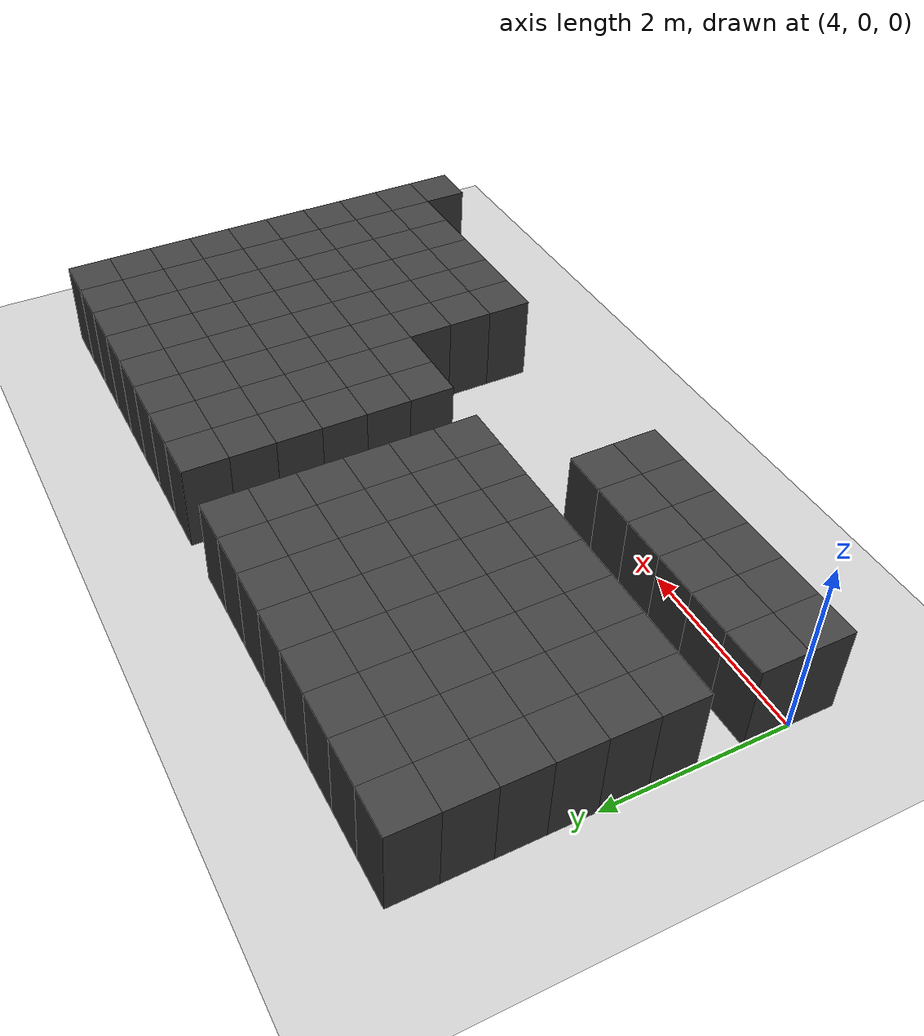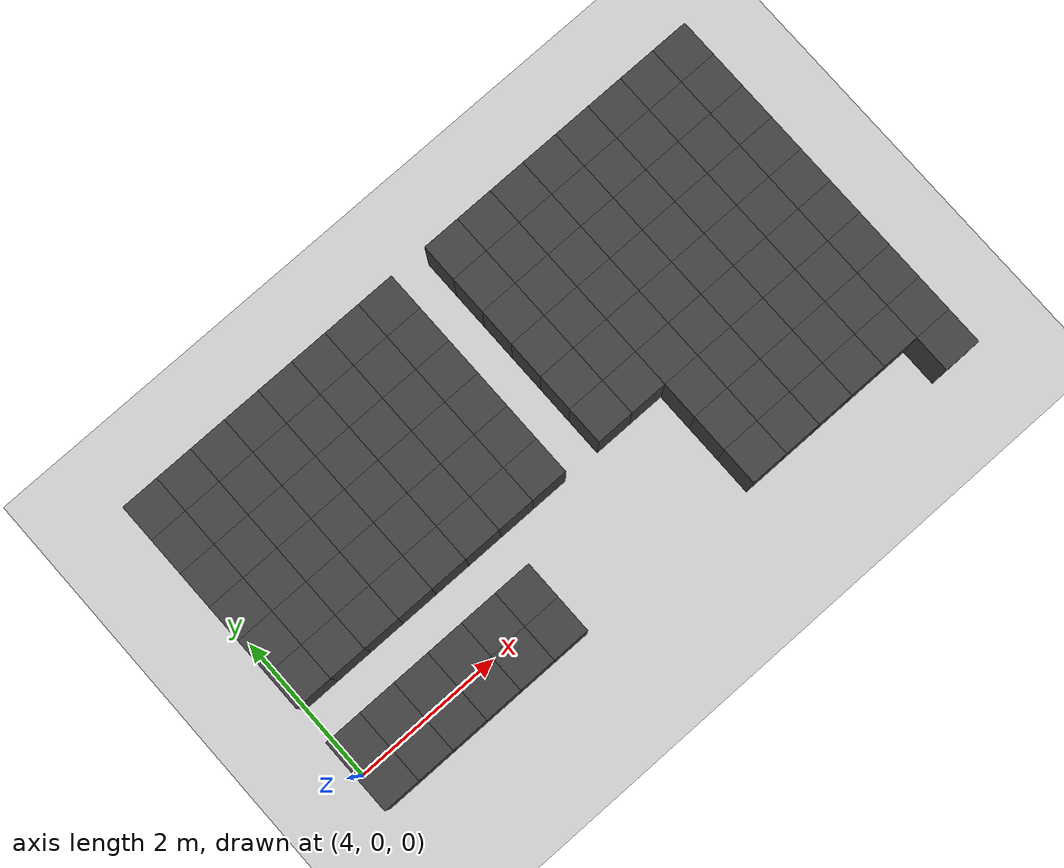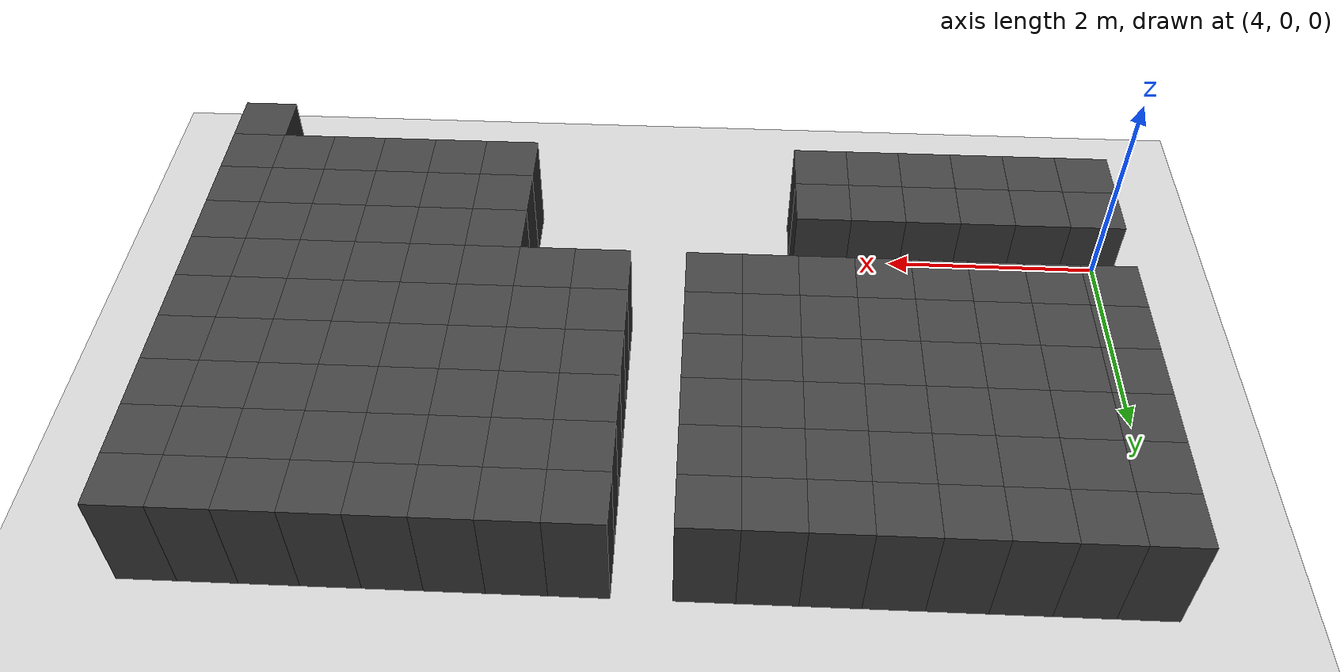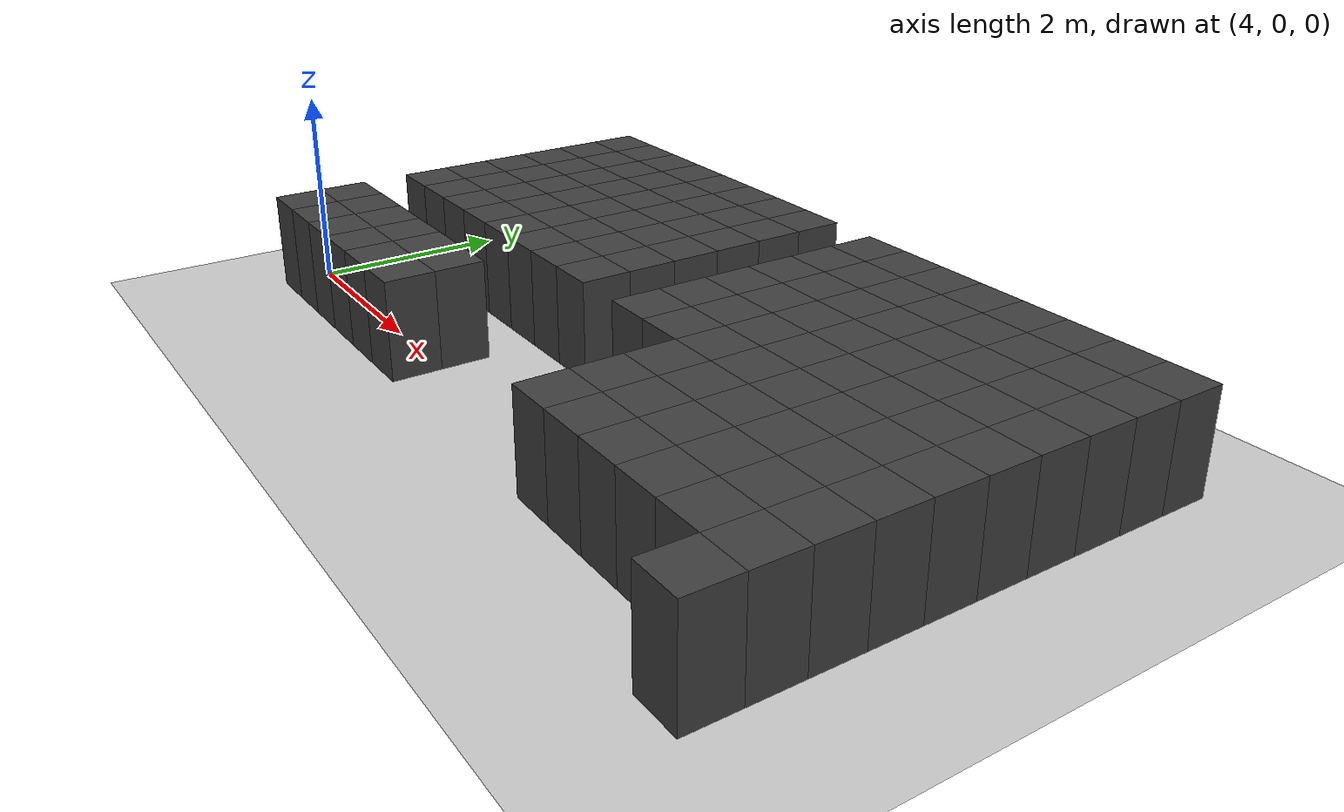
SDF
<sdf version="1.7">
 <world name="map_10777">
  <model name="ground_plane">
   <static>true</static>
   <link name="link">
    <collision name="collision">
     <geometry><plane><normal>0 0 1</normal><size>200 200</size></plane></geometry>
    </collision>
    <visual name="visual">
     <geometry><plane><normal>0 0 1</normal><size>200 200</size></plane></geometry>
     <material><ambient>0.8 0.8 0.8 1</ambient><diffuse>0.8 0.8 0.8 1</diffuse></material>
    </visual>
   </link>
  </model>
  <model name="maze_environment">
   <static>true</static>
   <link name="wall_824">
    <pose>4.250 3.750 0.500 0 0 0</pose>
    <collision name="col"><geometry><box><size>0.5 0.5 1.0</size></box></geometry></collision>
    <visual name="vis">
     <geometry><box><size>0.5 0.5 1.0</size></box></geometry>
     <material><ambient>0.15 0.15 0.15 1</ambient><diffuse>0.25 0.25 0.25 1</diffuse></material>
    </visual>
   </link>
   <link name="wall_825">
    <pose>4.750 3.750 0.500 0 0 0</pose>
    <collision name="col"><geometry><box><size>0.5 0.5 1.0</size></box></geometry></collision>
    <visual name="vis">
     <geometry><box><size>0.5 0.5 1.0</size></box></geometry>
     <material><ambient>0.15 0.15 0.15 1</ambient><diffuse>0.25 0.25 0.25 1</diffuse></material>
    </visual>
   </link>
   <link name="wall_826">
    <pose>5.250 3.750 0.500 0 0 0</pose>
    <collision name="col"><geometry><box><size>0.5 0.5 1.0</size></box></geometry></collision>
    <visual name="vis">
     <geometry><box><size>0.5 0.5 1.0</size></box></geometry>
     <material><ambient>0.15 0.15 0.15 1</ambient><diffuse>0.25 0.25 0.25 1</diffuse></material>
    </visual>
   </link>
   <link name="wall_827">
    <pose>5.750 3.750 0.500 0 0 0</pose>
    <collision name="col"><geometry><box><size>0.5 0.5 1.0</size></box></geometry></collision>
    <visual name="vis">
     <geometry><box><size>0.5 0.5 1.0</size></box></geometry>
     <material><ambient>0.15 0.15 0.15 1</ambient><diffuse>0.25 0.25 0.25 1</diffuse></material>
    </visual>
   </link>
   <link name="wall_828">
    <pose>6.250 3.750 0.500 0 0 0</pose>
    <collision name="col"><geometry><box><size>0.5 0.5 1.0</size></box></geometry></collision>
    <visual name="vis">
     <geometry><box><size>0.5 0.5 1.0</size></box></geometry>
     <material><ambient>0.15 0.15 0.15 1</ambient><diffuse>0.25 0.25 0.25 1</diffuse></material>
    </visual>
   </link>
   <link name="wall_829">
    <pose>6.750 3.750 0.500 0 0 0</pose>
    <collision name="col"><geometry><box><size>0.5 0.5 1.0</size></box></geometry></collision>
    <visual name="vis">
     <geometry><box><size>0.5 0.5 1.0</size></box></geometry>
     <material><ambient>0.15 0.15 0.15 1</ambient><diffuse>0.25 0.25 0.25 1</diffuse></material>
    </visual>
   </link>
   <link name="wall_830">
    <pose>7.250 3.750 0.500 0 0 0</pose>
    <collision name="col"><geometry><box><size>0.5 0.5 1.0</size></box></geometry></collision>
    <visual name="vis">
     <geometry><box><size>0.5 0.5 1.0</size></box></geometry>
     <material><ambient>0.15 0.15 0.15 1</ambient><diffuse>0.25 0.25 0.25 1</diffuse></material>
    </visual>
   </link>
   <link name="wall_831">
    <pose>7.750 3.750 0.500 0 0 0</pose>
    <collision name="col"><geometry><box><size>0.5 0.5 1.0</size></box></geometry></collision>
    <visual name="vis">
     <geometry><box><size>0.5 0.5 1.0</size></box></geometry>
     <material><ambient>0.15 0.15 0.15 1</ambient><diffuse>0.25 0.25 0.25 1</diffuse></material>
    </visual>
   </link>
   <link name="wall_832">
    <pose>8.750 3.750 0.500 0 0 0</pose>
    <collision name="col"><geometry><box><size>0.5 0.5 1.0</size></box></geometry></collision>
    <visual name="vis">
     <geometry><box><size>0.5 0.5 1.0</size></box></geometry>
     <material><ambient>0.15 0.15 0.15 1</ambient><diffuse>0.25 0.25 0.25 1</diffuse></material>
    </visual>
   </link>
   <link name="wall_833">
    <pose>9.250 3.750 0.500 0 0 0</pose>
    <collision name="col"><geometry><box><size>0.5 0.5 1.0</size></box></geometry></collision>
    <visual name="vis">
     <geometry><box><size>0.5 0.5 1.0</size></box></geometry>
     <material><ambient>0.15 0.15 0.15 1</ambient><diffuse>0.25 0.25 0.25 1</diffuse></material>
    </visual>
   </link>
   <link name="wall_834">
    <pose>9.750 3.750 0.500 0 0 0</pose>
    <collision name="col"><geometry><box><size>0.5 0.5 1.0</size></box></geometry></collision>
    <visual name="vis">
     <geometry><box><size>0.5 0.5 1.0</size></box></geometry>
     <material><ambient>0.15 0.15 0.15 1</ambient><diffuse>0.25 0.25 0.25 1</diffuse></material>
    </visual>
   </link>
   <link name="wall_835">
    <pose>10.250 3.750 0.500 0 0 0</pose>
    <collision name="col"><geometry><box><size>0.5 0.5 1.0</size></box></geometry></collision>
    <visual name="vis">
     <geometry><box><size>0.5 0.5 1.0</size></box></geometry>
     <material><ambient>0.15 0.15 0.15 1</ambient><diffuse>0.25 0.25 0.25 1</diffuse></material>
    </visual>
   </link>
   <link name="wall_836">
    <pose>10.750 3.750 0.500 0 0 0</pose>
    <collision name="col"><geometry><box><size>0.5 0.5 1.0</size></box></geometry></collision>
    <visual name="vis">
     <geometry><box><size>0.5 0.5 1.0</size></box></geometry>
     <material><ambient>0.15 0.15 0.15 1</ambient><diffuse>0.25 0.25 0.25 1</diffuse></material>
    </visual>
   </link>
   <link name="wall_837">
    <pose>11.250 3.750 0.500 0 0 0</pose>
    <collision name="col"><geometry><box><size>0.5 0.5 1.0</size></box></geometry></collision>
    <visual name="vis">
     <geometry><box><size>0.5 0.5 1.0</size></box></geometry>
     <material><ambient>0.15 0.15 0.15 1</ambient><diffuse>0.25 0.25 0.25 1</diffuse></material>
    </visual>
   </link>
   <link name="wall_838">
    <pose>11.750 3.750 0.500 0 0 0</pose>
    <collision name="col"><geometry><box><size>0.5 0.5 1.0</size></box></geometry></collision>
    <visual name="vis">
     <geometry><box><size>0.5 0.5 1.0</size></box></geometry>
     <material><ambient>0.15 0.15 0.15 1</ambient><diffuse>0.25 0.25 0.25 1</diffuse></material>
    </visual>
   </link>
   <link name="wall_839">
    <pose>12.250 3.750 0.500 0 0 0</pose>
    <collision name="col"><geometry><box><size>0.5 0.5 1.0</size></box></geometry></collision>
    <visual name="vis">
     <geometry><box><size>0.5 0.5 1.0</size></box></geometry>
     <material><ambient>0.15 0.15 0.15 1</ambient><diffuse>0.25 0.25 0.25 1</diffuse></material>
    </visual>
   </link>
   <link name="wall_872">
    <pose>4.250 3.250 0.500 0 0 0</pose>
    <collision name="col"><geometry><box><size>0.5 0.5 1.0</size></box></geometry></collision>
    <visual name="vis">
     <geometry><box><size>0.5 0.5 1.0</size></box></geometry>
     <material><ambient>0.15 0.15 0.15 1</ambient><diffuse>0.25 0.25 0.25 1</diffuse></material>
    </visual>
   </link>
   <link name="wall_873">
    <pose>4.750 3.250 0.500 0 0 0</pose>
    <collision name="col"><geometry><box><size>0.5 0.5 1.0</size></box></geometry></collision>
    <visual name="vis">
     <geometry><box><size>0.5 0.5 1.0</size></box></geometry>
     <material><ambient>0.15 0.15 0.15 1</ambient><diffuse>0.25 0.25 0.25 1</diffuse></material>
    </visual>
   </link>
   <link name="wall_874">
    <pose>5.250 3.250 0.500 0 0 0</pose>
    <collision name="col"><geometry><box><size>0.5 0.5 1.0</size></box></geometry></collision>
    <visual name="vis">
     <geometry><box><size>0.5 0.5 1.0</size></box></geometry>
     <material><ambient>0.15 0.15 0.15 1</ambient><diffuse>0.25 0.25 0.25 1</diffuse></material>
    </visual>
   </link>
   <link name="wall_875">
    <pose>5.750 3.250 0.500 0 0 0</pose>
    <collision name="col"><geometry><box><size>0.5 0.5 1.0</size></box></geometry></collision>
    <visual name="vis">
     <geometry><box><size>0.5 0.5 1.0</size></box></geometry>
     <material><ambient>0.15 0.15 0.15 1</ambient><diffuse>0.25 0.25 0.25 1</diffuse></material>
    </visual>
   </link>
   <link name="wall_876">
    <pose>6.250 3.250 0.500 0 0 0</pose>
    <collision name="col"><geometry><box><size>0.5 0.5 1.0</size></box></geometry></collision>
    <visual name="vis">
     <geometry><box><size>0.5 0.5 1.0</size></box></geometry>
     <material><ambient>0.15 0.15 0.15 1</ambient><diffuse>0.25 0.25 0.25 1</diffuse></material>
    </visual>
   </link>
   <link name="wall_877">
    <pose>6.750 3.250 0.500 0 0 0</pose>
    <collision name="col"><geometry><box><size>0.5 0.5 1.0</size></box></geometry></collision>
    <visual name="vis">
     <geometry><box><size>0.5 0.5 1.0</size></box></geometry>
     <material><ambient>0.15 0.15 0.15 1</ambient><diffuse>0.25 0.25 0.25 1</diffuse></material>
    </visual>
   </link>
   <link name="wall_878">
    <pose>7.250 3.250 0.500 0 0 0</pose>
    <collision name="col"><geometry><box><size>0.5 0.5 1.0</size></box></geometry></collision>
    <visual name="vis">
     <geometry><box><size>0.5 0.5 1.0</size></box></geometry>
     <material><ambient>0.15 0.15 0.15 1</ambient><diffuse>0.25 0.25 0.25 1</diffuse></material>
    </visual>
   </link>
   <link name="wall_879">
    <pose>7.750 3.250 0.500 0 0 0</pose>
    <collision name="col"><geometry><box><size>0.5 0.5 1.0</size></box></geometry></collision>
    <visual name="vis">
     <geometry><box><size>0.5 0.5 1.0</size></box></geometry>
     <material><ambient>0.15 0.15 0.15 1</ambient><diffuse>0.25 0.25 0.25 1</diffuse></material>
    </visual>
   </link>
   <link name="wall_880">
    <pose>8.750 3.250 0.500 0 0 0</pose>
    <collision name="col"><geometry><box><size>0.5 0.5 1.0</size></box></geometry></collision>
    <visual name="vis">
     <geometry><box><size>0.5 0.5 1.0</size></box></geometry>
     <material><ambient>0.15 0.15 0.15 1</ambient><diffuse>0.25 0.25 0.25 1</diffuse></material>
    </visual>
   </link>
   <link name="wall_881">
    <pose>9.250 3.250 0.500 0 0 0</pose>
    <collision name="col"><geometry><box><size>0.5 0.5 1.0</size></box></geometry></collision>
    <visual name="vis">
     <geometry><box><size>0.5 0.5 1.0</size></box></geometry>
     <material><ambient>0.15 0.15 0.15 1</ambient><diffuse>0.25 0.25 0.25 1</diffuse></material>
    </visual>
   </link>
   <link name="wall_882">
    <pose>9.750 3.250 0.500 0 0 0</pose>
    <collision name="col"><geometry><box><size>0.5 0.5 1.0</size></box></geometry></collision>
    <visual name="vis">
     <geometry><box><size>0.5 0.5 1.0</size></box></geometry>
     <material><ambient>0.15 0.15 0.15 1</ambient><diffuse>0.25 0.25 0.25 1</diffuse></material>
    </visual>
   </link>
   <link name="wall_883">
    <pose>10.250 3.250 0.500 0 0 0</pose>
    <collision name="col"><geometry><box><size>0.5 0.5 1.0</size></box></geometry></collision>
    <visual name="vis">
     <geometry><box><size>0.5 0.5 1.0</size></box></geometry>
     <material><ambient>0.15 0.15 0.15 1</ambient><diffuse>0.25 0.25 0.25 1</diffuse></material>
    </visual>
   </link>
   <link name="wall_884">
    <pose>10.750 3.250 0.500 0 0 0</pose>
    <collision name="col"><geometry><box><size>0.5 0.5 1.0</size></box></geometry></collision>
    <visual name="vis">
     <geometry><box><size>0.5 0.5 1.0</size></box></geometry>
     <material><ambient>0.15 0.15 0.15 1</ambient><diffuse>0.25 0.25 0.25 1</diffuse></material>
    </visual>
   </link>
   <link name="wall_885">
    <pose>11.250 3.250 0.500 0 0 0</pose>
    <collision name="col"><geometry><box><size>0.5 0.5 1.0</size></box></geometry></collision>
    <visual name="vis">
     <geometry><box><size>0.5 0.5 1.0</size></box></geometry>
     <material><ambient>0.15 0.15 0.15 1</ambient><diffuse>0.25 0.25 0.25 1</diffuse></material>
    </visual>
   </link>
   <link name="wall_886">
    <pose>11.750 3.250 0.500 0 0 0</pose>
    <collision name="col"><geometry><box><size>0.5 0.5 1.0</size></box></geometry></collision>
    <visual name="vis">
     <geometry><box><size>0.5 0.5 1.0</size></box></geometry>
     <material><ambient>0.15 0.15 0.15 1</ambient><diffuse>0.25 0.25 0.25 1</diffuse></material>
    </visual>
   </link>
   <link name="wall_887">
    <pose>12.250 3.250 0.500 0 0 0</pose>
    <collision name="col"><geometry><box><size>0.5 0.5 1.0</size></box></geometry></collision>
    <visual name="vis">
     <geometry><box><size>0.5 0.5 1.0</size></box></geometry>
     <material><ambient>0.15 0.15 0.15 1</ambient><diffuse>0.25 0.25 0.25 1</diffuse></material>
    </visual>
   </link>
   <link name="wall_920">
    <pose>4.250 2.750 0.500 0 0 0</pose>
    <collision name="col"><geometry><box><size>0.5 0.5 1.0</size></box></geometry></collision>
    <visual name="vis">
     <geometry><box><size>0.5 0.5 1.0</size></box></geometry>
     <material><ambient>0.15 0.15 0.15 1</ambient><diffuse>0.25 0.25 0.25 1</diffuse></material>
    </visual>
   </link>
   <link name="wall_921">
    <pose>4.750 2.750 0.500 0 0 0</pose>
    <collision name="col"><geometry><box><size>0.5 0.5 1.0</size></box></geometry></collision>
    <visual name="vis">
     <geometry><box><size>0.5 0.5 1.0</size></box></geometry>
     <material><ambient>0.15 0.15 0.15 1</ambient><diffuse>0.25 0.25 0.25 1</diffuse></material>
    </visual>
   </link>
   <link name="wall_922">
    <pose>5.250 2.750 0.500 0 0 0</pose>
    <collision name="col"><geometry><box><size>0.5 0.5 1.0</size></box></geometry></collision>
    <visual name="vis">
     <geometry><box><size>0.5 0.5 1.0</size></box></geometry>
     <material><ambient>0.15 0.15 0.15 1</ambient><diffuse>0.25 0.25 0.25 1</diffuse></material>
    </visual>
   </link>
   <link name="wall_923">
    <pose>5.750 2.750 0.500 0 0 0</pose>
    <collision name="col"><geometry><box><size>0.5 0.5 1.0</size></box></geometry></collision>
    <visual name="vis">
     <geometry><box><size>0.5 0.5 1.0</size></box></geometry>
     <material><ambient>0.15 0.15 0.15 1</ambient><diffuse>0.25 0.25 0.25 1</diffuse></material>
    </visual>
   </link>
   <link name="wall_924">
    <pose>6.250 2.750 0.500 0 0 0</pose>
    <collision name="col"><geometry><box><size>0.5 0.5 1.0</size></box></geometry></collision>
    <visual name="vis">
     <geometry><box><size>0.5 0.5 1.0</size></box></geometry>
     <material><ambient>0.15 0.15 0.15 1</ambient><diffuse>0.25 0.25 0.25 1</diffuse></material>
    </visual>
   </link>
   <link name="wall_925">
    <pose>6.750 2.750 0.500 0 0 0</pose>
    <collision name="col"><geometry><box><size>0.5 0.5 1.0</size></box></geometry></collision>
    <visual name="vis">
     <geometry><box><size>0.5 0.5 1.0</size></box></geometry>
     <material><ambient>0.15 0.15 0.15 1</ambient><diffuse>0.25 0.25 0.25 1</diffuse></material>
    </visual>
   </link>
   <link name="wall_926">
    <pose>7.250 2.750 0.500 0 0 0</pose>
    <collision name="col"><geometry><box><size>0.5 0.5 1.0</size></box></geometry></collision>
    <visual name="vis">
     <geometry><box><size>0.5 0.5 1.0</size></box></geometry>
     <material><ambient>0.15 0.15 0.15 1</ambient><diffuse>0.25 0.25 0.25 1</diffuse></material>
    </visual>
   </link>
   <link name="wall_927">
    <pose>7.750 2.750 0.500 0 0 0</pose>
    <collision name="col"><geometry><box><size>0.5 0.5 1.0</size></box></geometry></collision>
    <visual name="vis">
     <geometry><box><size>0.5 0.5 1.0</size></box></geometry>
     <material><ambient>0.15 0.15 0.15 1</ambient><diffuse>0.25 0.25 0.25 1</diffuse></material>
    </visual>
   </link>
   <link name="wall_928">
    <pose>8.750 2.750 0.500 0 0 0</pose>
    <collision name="col"><geometry><box><size>0.5 0.5 1.0</size></box></geometry></collision>
    <visual name="vis">
     <geometry><box><size>0.5 0.5 1.0</size></box></geometry>
     <material><ambient>0.15 0.15 0.15 1</ambient><diffuse>0.25 0.25 0.25 1</diffuse></material>
    </visual>
   </link>
   <link name="wall_929">
    <pose>9.250 2.750 0.500 0 0 0</pose>
    <collision name="col"><geometry><box><size>0.5 0.5 1.0</size></box></geometry></collision>
    <visual name="vis">
     <geometry><box><size>0.5 0.5 1.0</size></box></geometry>
     <material><ambient>0.15 0.15 0.15 1</ambient><diffuse>0.25 0.25 0.25 1</diffuse></material>
    </visual>
   </link>
   <link name="wall_930">
    <pose>9.750 2.750 0.500 0 0 0</pose>
    <collision name="col"><geometry><box><size>0.5 0.5 1.0</size></box></geometry></collision>
    <visual name="vis">
     <geometry><box><size>0.5 0.5 1.0</size></box></geometry>
     <material><ambient>0.15 0.15 0.15 1</ambient><diffuse>0.25 0.25 0.25 1</diffuse></material>
    </visual>
   </link>
   <link name="wall_931">
    <pose>10.250 2.750 0.500 0 0 0</pose>
    <collision name="col"><geometry><box><size>0.5 0.5 1.0</size></box></geometry></collision>
    <visual name="vis">
     <geometry><box><size>0.5 0.5 1.0</size></box></geometry>
     <material><ambient>0.15 0.15 0.15 1</ambient><diffuse>0.25 0.25 0.25 1</diffuse></material>
    </visual>
   </link>
   <link name="wall_932">
    <pose>10.750 2.750 0.500 0 0 0</pose>
    <collision name="col"><geometry><box><size>0.5 0.5 1.0</size></box></geometry></collision>
    <visual name="vis">
     <geometry><box><size>0.5 0.5 1.0</size></box></geometry>
     <material><ambient>0.15 0.15 0.15 1</ambient><diffuse>0.25 0.25 0.25 1</diffuse></material>
    </visual>
   </link>
   <link name="wall_933">
    <pose>11.250 2.750 0.500 0 0 0</pose>
    <collision name="col"><geometry><box><size>0.5 0.5 1.0</size></box></geometry></collision>
    <visual name="vis">
     <geometry><box><size>0.5 0.5 1.0</size></box></geometry>
     <material><ambient>0.15 0.15 0.15 1</ambient><diffuse>0.25 0.25 0.25 1</diffuse></material>
    </visual>
   </link>
   <link name="wall_934">
    <pose>11.750 2.750 0.500 0 0 0</pose>
    <collision name="col"><geometry><box><size>0.5 0.5 1.0</size></box></geometry></collision>
    <visual name="vis">
     <geometry><box><size>0.5 0.5 1.0</size></box></geometry>
     <material><ambient>0.15 0.15 0.15 1</ambient><diffuse>0.25 0.25 0.25 1</diffuse></material>
    </visual>
   </link>
   <link name="wall_935">
    <pose>12.250 2.750 0.500 0 0 0</pose>
    <collision name="col"><geometry><box><size>0.5 0.5 1.0</size></box></geometry></collision>
    <visual name="vis">
     <geometry><box><size>0.5 0.5 1.0</size></box></geometry>
     <material><ambient>0.15 0.15 0.15 1</ambient><diffuse>0.25 0.25 0.25 1</diffuse></material>
    </visual>
   </link>
   <link name="wall_968">
    <pose>4.250 2.250 0.500 0 0 0</pose>
    <collision name="col"><geometry><box><size>0.5 0.5 1.0</size></box></geometry></collision>
    <visual name="vis">
     <geometry><box><size>0.5 0.5 1.0</size></box></geometry>
     <material><ambient>0.15 0.15 0.15 1</ambient><diffuse>0.25 0.25 0.25 1</diffuse></material>
    </visual>
   </link>
   <link name="wall_969">
    <pose>4.750 2.250 0.500 0 0 0</pose>
    <collision name="col"><geometry><box><size>0.5 0.5 1.0</size></box></geometry></collision>
    <visual name="vis">
     <geometry><box><size>0.5 0.5 1.0</size></box></geometry>
     <material><ambient>0.15 0.15 0.15 1</ambient><diffuse>0.25 0.25 0.25 1</diffuse></material>
    </visual>
   </link>
   <link name="wall_970">
    <pose>5.250 2.250 0.500 0 0 0</pose>
    <collision name="col"><geometry><box><size>0.5 0.5 1.0</size></box></geometry></collision>
    <visual name="vis">
     <geometry><box><size>0.5 0.5 1.0</size></box></geometry>
     <material><ambient>0.15 0.15 0.15 1</ambient><diffuse>0.25 0.25 0.25 1</diffuse></material>
    </visual>
   </link>
   <link name="wall_971">
    <pose>5.750 2.250 0.500 0 0 0</pose>
    <collision name="col"><geometry><box><size>0.5 0.5 1.0</size></box></geometry></collision>
    <visual name="vis">
     <geometry><box><size>0.5 0.5 1.0</size></box></geometry>
     <material><ambient>0.15 0.15 0.15 1</ambient><diffuse>0.25 0.25 0.25 1</diffuse></material>
    </visual>
   </link>
   <link name="wall_972">
    <pose>6.250 2.250 0.500 0 0 0</pose>
    <collision name="col"><geometry><box><size>0.5 0.5 1.0</size></box></geometry></collision>
    <visual name="vis">
     <geometry><box><size>0.5 0.5 1.0</size></box></geometry>
     <material><ambient>0.15 0.15 0.15 1</ambient><diffuse>0.25 0.25 0.25 1</diffuse></material>
    </visual>
   </link>
   <link name="wall_973">
    <pose>6.750 2.250 0.500 0 0 0</pose>
    <collision name="col"><geometry><box><size>0.5 0.5 1.0</size></box></geometry></collision>
    <visual name="vis">
     <geometry><box><size>0.5 0.5 1.0</size></box></geometry>
     <material><ambient>0.15 0.15 0.15 1</ambient><diffuse>0.25 0.25 0.25 1</diffuse></material>
    </visual>
   </link>
   <link name="wall_974">
    <pose>7.250 2.250 0.500 0 0 0</pose>
    <collision name="col"><geometry><box><size>0.5 0.5 1.0</size></box></geometry></collision>
    <visual name="vis">
     <geometry><box><size>0.5 0.5 1.0</size></box></geometry>
     <material><ambient>0.15 0.15 0.15 1</ambient><diffuse>0.25 0.25 0.25 1</diffuse></material>
    </visual>
   </link>
   <link name="wall_975">
    <pose>7.750 2.250 0.500 0 0 0</pose>
    <collision name="col"><geometry><box><size>0.5 0.5 1.0</size></box></geometry></collision>
    <visual name="vis">
     <geometry><box><size>0.5 0.5 1.0</size></box></geometry>
     <material><ambient>0.15 0.15 0.15 1</ambient><diffuse>0.25 0.25 0.25 1</diffuse></material>
    </visual>
   </link>
   <link name="wall_976">
    <pose>8.750 2.250 0.500 0 0 0</pose>
    <collision name="col"><geometry><box><size>0.5 0.5 1.0</size></box></geometry></collision>
    <visual name="vis">
     <geometry><box><size>0.5 0.5 1.0</size></box></geometry>
     <material><ambient>0.15 0.15 0.15 1</ambient><diffuse>0.25 0.25 0.25 1</diffuse></material>
    </visual>
   </link>
   <link name="wall_977">
    <pose>9.250 2.250 0.500 0 0 0</pose>
    <collision name="col"><geometry><box><size>0.5 0.5 1.0</size></box></geometry></collision>
    <visual name="vis">
     <geometry><box><size>0.5 0.5 1.0</size></box></geometry>
     <material><ambient>0.15 0.15 0.15 1</ambient><diffuse>0.25 0.25 0.25 1</diffuse></material>
    </visual>
   </link>
   <link name="wall_978">
    <pose>9.750 2.250 0.500 0 0 0</pose>
    <collision name="col"><geometry><box><size>0.5 0.5 1.0</size></box></geometry></collision>
    <visual name="vis">
     <geometry><box><size>0.5 0.5 1.0</size></box></geometry>
     <material><ambient>0.15 0.15 0.15 1</ambient><diffuse>0.25 0.25 0.25 1</diffuse></material>
    </visual>
   </link>
   <link name="wall_979">
    <pose>10.250 2.250 0.500 0 0 0</pose>
    <collision name="col"><geometry><box><size>0.5 0.5 1.0</size></box></geometry></collision>
    <visual name="vis">
     <geometry><box><size>0.5 0.5 1.0</size></box></geometry>
     <material><ambient>0.15 0.15 0.15 1</ambient><diffuse>0.25 0.25 0.25 1</diffuse></material>
    </visual>
   </link>
   <link name="wall_980">
    <pose>10.750 2.250 0.500 0 0 0</pose>
    <collision name="col"><geometry><box><size>0.5 0.5 1.0</size></box></geometry></collision>
    <visual name="vis">
     <geometry><box><size>0.5 0.5 1.0</size></box></geometry>
     <material><ambient>0.15 0.15 0.15 1</ambient><diffuse>0.25 0.25 0.25 1</diffuse></material>
    </visual>
   </link>
   <link name="wall_981">
    <pose>11.250 2.250 0.500 0 0 0</pose>
    <collision name="col"><geometry><box><size>0.5 0.5 1.0</size></box></geometry></collision>
    <visual name="vis">
     <geometry><box><size>0.5 0.5 1.0</size></box></geometry>
     <material><ambient>0.15 0.15 0.15 1</ambient><diffuse>0.25 0.25 0.25 1</diffuse></material>
    </visual>
   </link>
   <link name="wall_982">
    <pose>11.750 2.250 0.500 0 0 0</pose>
    <collision name="col"><geometry><box><size>0.5 0.5 1.0</size></box></geometry></collision>
    <visual name="vis">
     <geometry><box><size>0.5 0.5 1.0</size></box></geometry>
     <material><ambient>0.15 0.15 0.15 1</ambient><diffuse>0.25 0.25 0.25 1</diffuse></material>
    </visual>
   </link>
   <link name="wall_983">
    <pose>12.250 2.250 0.500 0 0 0</pose>
    <collision name="col"><geometry><box><size>0.5 0.5 1.0</size></box></geometry></collision>
    <visual name="vis">
     <geometry><box><size>0.5 0.5 1.0</size></box></geometry>
     <material><ambient>0.15 0.15 0.15 1</ambient><diffuse>0.25 0.25 0.25 1</diffuse></material>
    </visual>
   </link>
   <link name="wall_1010">
    <pose>4.250 1.750 0.500 0 0 0</pose>
    <collision name="col"><geometry><box><size>0.5 0.5 1.0</size></box></geometry></collision>
    <visual name="vis">
     <geometry><box><size>0.5 0.5 1.0</size></box></geometry>
     <material><ambient>0.15 0.15 0.15 1</ambient><diffuse>0.25 0.25 0.25 1</diffuse></material>
    </visual>
   </link>
   <link name="wall_1011">
    <pose>4.750 1.750 0.500 0 0 0</pose>
    <collision name="col"><geometry><box><size>0.5 0.5 1.0</size></box></geometry></collision>
    <visual name="vis">
     <geometry><box><size>0.5 0.5 1.0</size></box></geometry>
     <material><ambient>0.15 0.15 0.15 1</ambient><diffuse>0.25 0.25 0.25 1</diffuse></material>
    </visual>
   </link>
   <link name="wall_1012">
    <pose>5.250 1.750 0.500 0 0 0</pose>
    <collision name="col"><geometry><box><size>0.5 0.5 1.0</size></box></geometry></collision>
    <visual name="vis">
     <geometry><box><size>0.5 0.5 1.0</size></box></geometry>
     <material><ambient>0.15 0.15 0.15 1</ambient><diffuse>0.25 0.25 0.25 1</diffuse></material>
    </visual>
   </link>
   <link name="wall_1013">
    <pose>5.750 1.750 0.500 0 0 0</pose>
    <collision name="col"><geometry><box><size>0.5 0.5 1.0</size></box></geometry></collision>
    <visual name="vis">
     <geometry><box><size>0.5 0.5 1.0</size></box></geometry>
     <material><ambient>0.15 0.15 0.15 1</ambient><diffuse>0.25 0.25 0.25 1</diffuse></material>
    </visual>
   </link>
   <link name="wall_1014">
    <pose>6.250 1.750 0.500 0 0 0</pose>
    <collision name="col"><geometry><box><size>0.5 0.5 1.0</size></box></geometry></collision>
    <visual name="vis">
     <geometry><box><size>0.5 0.5 1.0</size></box></geometry>
     <material><ambient>0.15 0.15 0.15 1</ambient><diffuse>0.25 0.25 0.25 1</diffuse></material>
    </visual>
   </link>
   <link name="wall_1015">
    <pose>6.750 1.750 0.500 0 0 0</pose>
    <collision name="col"><geometry><box><size>0.5 0.5 1.0</size></box></geometry></collision>
    <visual name="vis">
     <geometry><box><size>0.5 0.5 1.0</size></box></geometry>
     <material><ambient>0.15 0.15 0.15 1</ambient><diffuse>0.25 0.25 0.25 1</diffuse></material>
    </visual>
   </link>
   <link name="wall_1016">
    <pose>7.250 1.750 0.500 0 0 0</pose>
    <collision name="col"><geometry><box><size>0.5 0.5 1.0</size></box></geometry></collision>
    <visual name="vis">
     <geometry><box><size>0.5 0.5 1.0</size></box></geometry>
     <material><ambient>0.15 0.15 0.15 1</ambient><diffuse>0.25 0.25 0.25 1</diffuse></material>
    </visual>
   </link>
   <link name="wall_1017">
    <pose>7.750 1.750 0.500 0 0 0</pose>
    <collision name="col"><geometry><box><size>0.5 0.5 1.0</size></box></geometry></collision>
    <visual name="vis">
     <geometry><box><size>0.5 0.5 1.0</size></box></geometry>
     <material><ambient>0.15 0.15 0.15 1</ambient><diffuse>0.25 0.25 0.25 1</diffuse></material>
    </visual>
   </link>
   <link name="wall_1018">
    <pose>8.750 1.750 0.500 0 0 0</pose>
    <collision name="col"><geometry><box><size>0.5 0.5 1.0</size></box></geometry></collision>
    <visual name="vis">
     <geometry><box><size>0.5 0.5 1.0</size></box></geometry>
     <material><ambient>0.15 0.15 0.15 1</ambient><diffuse>0.25 0.25 0.25 1</diffuse></material>
    </visual>
   </link>
   <link name="wall_1019">
    <pose>9.250 1.750 0.500 0 0 0</pose>
    <collision name="col"><geometry><box><size>0.5 0.5 1.0</size></box></geometry></collision>
    <visual name="vis">
     <geometry><box><size>0.5 0.5 1.0</size></box></geometry>
     <material><ambient>0.15 0.15 0.15 1</ambient><diffuse>0.25 0.25 0.25 1</diffuse></material>
    </visual>
   </link>
   <link name="wall_1020">
    <pose>9.750 1.750 0.500 0 0 0</pose>
    <collision name="col"><geometry><box><size>0.5 0.5 1.0</size></box></geometry></collision>
    <visual name="vis">
     <geometry><box><size>0.5 0.5 1.0</size></box></geometry>
     <material><ambient>0.15 0.15 0.15 1</ambient><diffuse>0.25 0.25 0.25 1</diffuse></material>
    </visual>
   </link>
   <link name="wall_1021">
    <pose>10.250 1.750 0.500 0 0 0</pose>
    <collision name="col"><geometry><box><size>0.5 0.5 1.0</size></box></geometry></collision>
    <visual name="vis">
     <geometry><box><size>0.5 0.5 1.0</size></box></geometry>
     <material><ambient>0.15 0.15 0.15 1</ambient><diffuse>0.25 0.25 0.25 1</diffuse></material>
    </visual>
   </link>
   <link name="wall_1022">
    <pose>10.750 1.750 0.500 0 0 0</pose>
    <collision name="col"><geometry><box><size>0.5 0.5 1.0</size></box></geometry></collision>
    <visual name="vis">
     <geometry><box><size>0.5 0.5 1.0</size></box></geometry>
     <material><ambient>0.15 0.15 0.15 1</ambient><diffuse>0.25 0.25 0.25 1</diffuse></material>
    </visual>
   </link>
   <link name="wall_1023">
    <pose>11.250 1.750 0.500 0 0 0</pose>
    <collision name="col"><geometry><box><size>0.5 0.5 1.0</size></box></geometry></collision>
    <visual name="vis">
     <geometry><box><size>0.5 0.5 1.0</size></box></geometry>
     <material><ambient>0.15 0.15 0.15 1</ambient><diffuse>0.25 0.25 0.25 1</diffuse></material>
    </visual>
   </link>
   <link name="wall_1024">
    <pose>11.750 1.750 0.500 0 0 0</pose>
    <collision name="col"><geometry><box><size>0.5 0.5 1.0</size></box></geometry></collision>
    <visual name="vis">
     <geometry><box><size>0.5 0.5 1.0</size></box></geometry>
     <material><ambient>0.15 0.15 0.15 1</ambient><diffuse>0.25 0.25 0.25 1</diffuse></material>
    </visual>
   </link>
   <link name="wall_1025">
    <pose>12.250 1.750 0.500 0 0 0</pose>
    <collision name="col"><geometry><box><size>0.5 0.5 1.0</size></box></geometry></collision>
    <visual name="vis">
     <geometry><box><size>0.5 0.5 1.0</size></box></geometry>
     <material><ambient>0.15 0.15 0.15 1</ambient><diffuse>0.25 0.25 0.25 1</diffuse></material>
    </visual>
   </link>
   <link name="wall_1052">
    <pose>4.250 1.250 0.500 0 0 0</pose>
    <collision name="col"><geometry><box><size>0.5 0.5 1.0</size></box></geometry></collision>
    <visual name="vis">
     <geometry><box><size>0.5 0.5 1.0</size></box></geometry>
     <material><ambient>0.15 0.15 0.15 1</ambient><diffuse>0.25 0.25 0.25 1</diffuse></material>
    </visual>
   </link>
   <link name="wall_1053">
    <pose>4.750 1.250 0.500 0 0 0</pose>
    <collision name="col"><geometry><box><size>0.5 0.5 1.0</size></box></geometry></collision>
    <visual name="vis">
     <geometry><box><size>0.5 0.5 1.0</size></box></geometry>
     <material><ambient>0.15 0.15 0.15 1</ambient><diffuse>0.25 0.25 0.25 1</diffuse></material>
    </visual>
   </link>
   <link name="wall_1054">
    <pose>5.250 1.250 0.500 0 0 0</pose>
    <collision name="col"><geometry><box><size>0.5 0.5 1.0</size></box></geometry></collision>
    <visual name="vis">
     <geometry><box><size>0.5 0.5 1.0</size></box></geometry>
     <material><ambient>0.15 0.15 0.15 1</ambient><diffuse>0.25 0.25 0.25 1</diffuse></material>
    </visual>
   </link>
   <link name="wall_1055">
    <pose>5.750 1.250 0.500 0 0 0</pose>
    <collision name="col"><geometry><box><size>0.5 0.5 1.0</size></box></geometry></collision>
    <visual name="vis">
     <geometry><box><size>0.5 0.5 1.0</size></box></geometry>
     <material><ambient>0.15 0.15 0.15 1</ambient><diffuse>0.25 0.25 0.25 1</diffuse></material>
    </visual>
   </link>
   <link name="wall_1056">
    <pose>6.250 1.250 0.500 0 0 0</pose>
    <collision name="col"><geometry><box><size>0.5 0.5 1.0</size></box></geometry></collision>
    <visual name="vis">
     <geometry><box><size>0.5 0.5 1.0</size></box></geometry>
     <material><ambient>0.15 0.15 0.15 1</ambient><diffuse>0.25 0.25 0.25 1</diffuse></material>
    </visual>
   </link>
   <link name="wall_1057">
    <pose>6.750 1.250 0.500 0 0 0</pose>
    <collision name="col"><geometry><box><size>0.5 0.5 1.0</size></box></geometry></collision>
    <visual name="vis">
     <geometry><box><size>0.5 0.5 1.0</size></box></geometry>
     <material><ambient>0.15 0.15 0.15 1</ambient><diffuse>0.25 0.25 0.25 1</diffuse></material>
    </visual>
   </link>
   <link name="wall_1058">
    <pose>7.250 1.250 0.500 0 0 0</pose>
    <collision name="col"><geometry><box><size>0.5 0.5 1.0</size></box></geometry></collision>
    <visual name="vis">
     <geometry><box><size>0.5 0.5 1.0</size></box></geometry>
     <material><ambient>0.15 0.15 0.15 1</ambient><diffuse>0.25 0.25 0.25 1</diffuse></material>
    </visual>
   </link>
   <link name="wall_1059">
    <pose>7.750 1.250 0.500 0 0 0</pose>
    <collision name="col"><geometry><box><size>0.5 0.5 1.0</size></box></geometry></collision>
    <visual name="vis">
     <geometry><box><size>0.5 0.5 1.0</size></box></geometry>
     <material><ambient>0.15 0.15 0.15 1</ambient><diffuse>0.25 0.25 0.25 1</diffuse></material>
    </visual>
   </link>
   <link name="wall_1060">
    <pose>8.750 1.250 0.500 0 0 0</pose>
    <collision name="col"><geometry><box><size>0.5 0.5 1.0</size></box></geometry></collision>
    <visual name="vis">
     <geometry><box><size>0.5 0.5 1.0</size></box></geometry>
     <material><ambient>0.15 0.15 0.15 1</ambient><diffuse>0.25 0.25 0.25 1</diffuse></material>
    </visual>
   </link>
   <link name="wall_1061">
    <pose>9.250 1.250 0.500 0 0 0</pose>
    <collision name="col"><geometry><box><size>0.5 0.5 1.0</size></box></geometry></collision>
    <visual name="vis">
     <geometry><box><size>0.5 0.5 1.0</size></box></geometry>
     <material><ambient>0.15 0.15 0.15 1</ambient><diffuse>0.25 0.25 0.25 1</diffuse></material>
    </visual>
   </link>
   <link name="wall_1062">
    <pose>9.750 1.250 0.500 0 0 0</pose>
    <collision name="col"><geometry><box><size>0.5 0.5 1.0</size></box></geometry></collision>
    <visual name="vis">
     <geometry><box><size>0.5 0.5 1.0</size></box></geometry>
     <material><ambient>0.15 0.15 0.15 1</ambient><diffuse>0.25 0.25 0.25 1</diffuse></material>
    </visual>
   </link>
   <link name="wall_1063">
    <pose>10.250 1.250 0.500 0 0 0</pose>
    <collision name="col"><geometry><box><size>0.5 0.5 1.0</size></box></geometry></collision>
    <visual name="vis">
     <geometry><box><size>0.5 0.5 1.0</size></box></geometry>
     <material><ambient>0.15 0.15 0.15 1</ambient><diffuse>0.25 0.25 0.25 1</diffuse></material>
    </visual>
   </link>
   <link name="wall_1064">
    <pose>10.750 1.250 0.500 0 0 0</pose>
    <collision name="col"><geometry><box><size>0.5 0.5 1.0</size></box></geometry></collision>
    <visual name="vis">
     <geometry><box><size>0.5 0.5 1.0</size></box></geometry>
     <material><ambient>0.15 0.15 0.15 1</ambient><diffuse>0.25 0.25 0.25 1</diffuse></material>
    </visual>
   </link>
   <link name="wall_1065">
    <pose>11.250 1.250 0.500 0 0 0</pose>
    <collision name="col"><geometry><box><size>0.5 0.5 1.0</size></box></geometry></collision>
    <visual name="vis">
     <geometry><box><size>0.5 0.5 1.0</size></box></geometry>
     <material><ambient>0.15 0.15 0.15 1</ambient><diffuse>0.25 0.25 0.25 1</diffuse></material>
    </visual>
   </link>
   <link name="wall_1066">
    <pose>11.750 1.250 0.500 0 0 0</pose>
    <collision name="col"><geometry><box><size>0.5 0.5 1.0</size></box></geometry></collision>
    <visual name="vis">
     <geometry><box><size>0.5 0.5 1.0</size></box></geometry>
     <material><ambient>0.15 0.15 0.15 1</ambient><diffuse>0.25 0.25 0.25 1</diffuse></material>
    </visual>
   </link>
   <link name="wall_1067">
    <pose>12.250 1.250 0.500 0 0 0</pose>
    <collision name="col"><geometry><box><size>0.5 0.5 1.0</size></box></geometry></collision>
    <visual name="vis">
     <geometry><box><size>0.5 0.5 1.0</size></box></geometry>
     <material><ambient>0.15 0.15 0.15 1</ambient><diffuse>0.25 0.25 0.25 1</diffuse></material>
    </visual>
   </link>
   <link name="wall_1085">
    <pose>9.750 0.750 0.500 0 0 0</pose>
    <collision name="col"><geometry><box><size>0.5 0.5 1.0</size></box></geometry></collision>
    <visual name="vis">
     <geometry><box><size>0.5 0.5 1.0</size></box></geometry>
     <material><ambient>0.15 0.15 0.15 1</ambient><diffuse>0.25 0.25 0.25 1</diffuse></material>
    </visual>
   </link>
   <link name="wall_1086">
    <pose>10.250 0.750 0.500 0 0 0</pose>
    <collision name="col"><geometry><box><size>0.5 0.5 1.0</size></box></geometry></collision>
    <visual name="vis">
     <geometry><box><size>0.5 0.5 1.0</size></box></geometry>
     <material><ambient>0.15 0.15 0.15 1</ambient><diffuse>0.25 0.25 0.25 1</diffuse></material>
    </visual>
   </link>
   <link name="wall_1087">
    <pose>10.750 0.750 0.500 0 0 0</pose>
    <collision name="col"><geometry><box><size>0.5 0.5 1.0</size></box></geometry></collision>
    <visual name="vis">
     <geometry><box><size>0.5 0.5 1.0</size></box></geometry>
     <material><ambient>0.15 0.15 0.15 1</ambient><diffuse>0.25 0.25 0.25 1</diffuse></material>
    </visual>
   </link>
   <link name="wall_1088">
    <pose>11.250 0.750 0.500 0 0 0</pose>
    <collision name="col"><geometry><box><size>0.5 0.5 1.0</size></box></geometry></collision>
    <visual name="vis">
     <geometry><box><size>0.5 0.5 1.0</size></box></geometry>
     <material><ambient>0.15 0.15 0.15 1</ambient><diffuse>0.25 0.25 0.25 1</diffuse></material>
    </visual>
   </link>
   <link name="wall_1089">
    <pose>11.750 0.750 0.500 0 0 0</pose>
    <collision name="col"><geometry><box><size>0.5 0.5 1.0</size></box></geometry></collision>
    <visual name="vis">
     <geometry><box><size>0.5 0.5 1.0</size></box></geometry>
     <material><ambient>0.15 0.15 0.15 1</ambient><diffuse>0.25 0.25 0.25 1</diffuse></material>
    </visual>
   </link>
   <link name="wall_1090">
    <pose>12.250 0.750 0.500 0 0 0</pose>
    <collision name="col"><geometry><box><size>0.5 0.5 1.0</size></box></geometry></collision>
    <visual name="vis">
     <geometry><box><size>0.5 0.5 1.0</size></box></geometry>
     <material><ambient>0.15 0.15 0.15 1</ambient><diffuse>0.25 0.25 0.25 1</diffuse></material>
    </visual>
   </link>
   <link name="wall_1117">
    <pose>4.250 0.250 0.500 0 0 0</pose>
    <collision name="col"><geometry><box><size>0.5 0.5 1.0</size></box></geometry></collision>
    <visual name="vis">
     <geometry><box><size>0.5 0.5 1.0</size></box></geometry>
     <material><ambient>0.15 0.15 0.15 1</ambient><diffuse>0.25 0.25 0.25 1</diffuse></material>
    </visual>
   </link>
   <link name="wall_1118">
    <pose>4.750 0.250 0.500 0 0 0</pose>
    <collision name="col"><geometry><box><size>0.5 0.5 1.0</size></box></geometry></collision>
    <visual name="vis">
     <geometry><box><size>0.5 0.5 1.0</size></box></geometry>
     <material><ambient>0.15 0.15 0.15 1</ambient><diffuse>0.25 0.25 0.25 1</diffuse></material>
    </visual>
   </link>
   <link name="wall_1119">
    <pose>5.250 0.250 0.500 0 0 0</pose>
    <collision name="col"><geometry><box><size>0.5 0.5 1.0</size></box></geometry></collision>
    <visual name="vis">
     <geometry><box><size>0.5 0.5 1.0</size></box></geometry>
     <material><ambient>0.15 0.15 0.15 1</ambient><diffuse>0.25 0.25 0.25 1</diffuse></material>
    </visual>
   </link>
   <link name="wall_1120">
    <pose>5.750 0.250 0.500 0 0 0</pose>
    <collision name="col"><geometry><box><size>0.5 0.5 1.0</size></box></geometry></collision>
    <visual name="vis">
     <geometry><box><size>0.5 0.5 1.0</size></box></geometry>
     <material><ambient>0.15 0.15 0.15 1</ambient><diffuse>0.25 0.25 0.25 1</diffuse></material>
    </visual>
   </link>
   <link name="wall_1121">
    <pose>6.250 0.250 0.500 0 0 0</pose>
    <collision name="col"><geometry><box><size>0.5 0.5 1.0</size></box></geometry></collision>
    <visual name="vis">
     <geometry><box><size>0.5 0.5 1.0</size></box></geometry>
     <material><ambient>0.15 0.15 0.15 1</ambient><diffuse>0.25 0.25 0.25 1</diffuse></material>
    </visual>
   </link>
   <link name="wall_1122">
    <pose>6.750 0.250 0.500 0 0 0</pose>
    <collision name="col"><geometry><box><size>0.5 0.5 1.0</size></box></geometry></collision>
    <visual name="vis">
     <geometry><box><size>0.5 0.5 1.0</size></box></geometry>
     <material><ambient>0.15 0.15 0.15 1</ambient><diffuse>0.25 0.25 0.25 1</diffuse></material>
    </visual>
   </link>
   <link name="wall_1123">
    <pose>9.750 0.250 0.500 0 0 0</pose>
    <collision name="col"><geometry><box><size>0.5 0.5 1.0</size></box></geometry></collision>
    <visual name="vis">
     <geometry><box><size>0.5 0.5 1.0</size></box></geometry>
     <material><ambient>0.15 0.15 0.15 1</ambient><diffuse>0.25 0.25 0.25 1</diffuse></material>
    </visual>
   </link>
   <link name="wall_1124">
    <pose>10.250 0.250 0.500 0 0 0</pose>
    <collision name="col"><geometry><box><size>0.5 0.5 1.0</size></box></geometry></collision>
    <visual name="vis">
     <geometry><box><size>0.5 0.5 1.0</size></box></geometry>
     <material><ambient>0.15 0.15 0.15 1</ambient><diffuse>0.25 0.25 0.25 1</diffuse></material>
    </visual>
   </link>
   <link name="wall_1125">
    <pose>10.750 0.250 0.500 0 0 0</pose>
    <collision name="col"><geometry><box><size>0.5 0.5 1.0</size></box></geometry></collision>
    <visual name="vis">
     <geometry><box><size>0.5 0.5 1.0</size></box></geometry>
     <material><ambient>0.15 0.15 0.15 1</ambient><diffuse>0.25 0.25 0.25 1</diffuse></material>
    </visual>
   </link>
   <link name="wall_1126">
    <pose>11.250 0.250 0.500 0 0 0</pose>
    <collision name="col"><geometry><box><size>0.5 0.5 1.0</size></box></geometry></collision>
    <visual name="vis">
     <geometry><box><size>0.5 0.5 1.0</size></box></geometry>
     <material><ambient>0.15 0.15 0.15 1</ambient><diffuse>0.25 0.25 0.25 1</diffuse></material>
    </visual>
   </link>
   <link name="wall_1127">
    <pose>11.750 0.250 0.500 0 0 0</pose>
    <collision name="col"><geometry><box><size>0.5 0.5 1.0</size></box></geometry></collision>
    <visual name="vis">
     <geometry><box><size>0.5 0.5 1.0</size></box></geometry>
     <material><ambient>0.15 0.15 0.15 1</ambient><diffuse>0.25 0.25 0.25 1</diffuse></material>
    </visual>
   </link>
   <link name="wall_1128">
    <pose>12.250 0.250 0.500 0 0 0</pose>
    <collision name="col"><geometry><box><size>0.5 0.5 1.0</size></box></geometry></collision>
    <visual name="vis">
     <geometry><box><size>0.5 0.5 1.0</size></box></geometry>
     <material><ambient>0.15 0.15 0.15 1</ambient><diffuse>0.25 0.25 0.25 1</diffuse></material>
    </visual>
   </link>
   <link name="wall_1161">
    <pose>4.250 -0.250 0.500 0 0 0</pose>
    <collision name="col"><geometry><box><size>0.5 0.5 1.0</size></box></geometry></collision>
    <visual name="vis">
     <geometry><box><size>0.5 0.5 1.0</size></box></geometry>
     <material><ambient>0.15 0.15 0.15 1</ambient><diffuse>0.25 0.25 0.25 1</diffuse></material>
    </visual>
   </link>
   <link name="wall_1162">
    <pose>4.750 -0.250 0.500 0 0 0</pose>
    <collision name="col"><geometry><box><size>0.5 0.5 1.0</size></box></geometry></collision>
    <visual name="vis">
     <geometry><box><size>0.5 0.5 1.0</size></box></geometry>
     <material><ambient>0.15 0.15 0.15 1</ambient><diffuse>0.25 0.25 0.25 1</diffuse></material>
    </visual>
   </link>
   <link name="wall_1163">
    <pose>5.250 -0.250 0.500 0 0 0</pose>
    <collision name="col"><geometry><box><size>0.5 0.5 1.0</size></box></geometry></collision>
    <visual name="vis">
     <geometry><box><size>0.5 0.5 1.0</size></box></geometry>
     <material><ambient>0.15 0.15 0.15 1</ambient><diffuse>0.25 0.25 0.25 1</diffuse></material>
    </visual>
   </link>
   <link name="wall_1164">
    <pose>5.750 -0.250 0.500 0 0 0</pose>
    <collision name="col"><geometry><box><size>0.5 0.5 1.0</size></box></geometry></collision>
    <visual name="vis">
     <geometry><box><size>0.5 0.5 1.0</size></box></geometry>
     <material><ambient>0.15 0.15 0.15 1</ambient><diffuse>0.25 0.25 0.25 1</diffuse></material>
    </visual>
   </link>
   <link name="wall_1165">
    <pose>6.250 -0.250 0.500 0 0 0</pose>
    <collision name="col"><geometry><box><size>0.5 0.5 1.0</size></box></geometry></collision>
    <visual name="vis">
     <geometry><box><size>0.5 0.5 1.0</size></box></geometry>
     <material><ambient>0.15 0.15 0.15 1</ambient><diffuse>0.25 0.25 0.25 1</diffuse></material>
    </visual>
   </link>
   <link name="wall_1166">
    <pose>6.750 -0.250 0.500 0 0 0</pose>
    <collision name="col"><geometry><box><size>0.5 0.5 1.0</size></box></geometry></collision>
    <visual name="vis">
     <geometry><box><size>0.5 0.5 1.0</size></box></geometry>
     <material><ambient>0.15 0.15 0.15 1</ambient><diffuse>0.25 0.25 0.25 1</diffuse></material>
    </visual>
   </link>
   <link name="wall_1167">
    <pose>9.750 -0.250 0.500 0 0 0</pose>
    <collision name="col"><geometry><box><size>0.5 0.5 1.0</size></box></geometry></collision>
    <visual name="vis">
     <geometry><box><size>0.5 0.5 1.0</size></box></geometry>
     <material><ambient>0.15 0.15 0.15 1</ambient><diffuse>0.25 0.25 0.25 1</diffuse></material>
    </visual>
   </link>
   <link name="wall_1168">
    <pose>10.250 -0.250 0.500 0 0 0</pose>
    <collision name="col"><geometry><box><size>0.5 0.5 1.0</size></box></geometry></collision>
    <visual name="vis">
     <geometry><box><size>0.5 0.5 1.0</size></box></geometry>
     <material><ambient>0.15 0.15 0.15 1</ambient><diffuse>0.25 0.25 0.25 1</diffuse></material>
    </visual>
   </link>
   <link name="wall_1169">
    <pose>10.750 -0.250 0.500 0 0 0</pose>
    <collision name="col"><geometry><box><size>0.5 0.5 1.0</size></box></geometry></collision>
    <visual name="vis">
     <geometry><box><size>0.5 0.5 1.0</size></box></geometry>
     <material><ambient>0.15 0.15 0.15 1</ambient><diffuse>0.25 0.25 0.25 1</diffuse></material>
    </visual>
   </link>
   <link name="wall_1170">
    <pose>11.250 -0.250 0.500 0 0 0</pose>
    <collision name="col"><geometry><box><size>0.5 0.5 1.0</size></box></geometry></collision>
    <visual name="vis">
     <geometry><box><size>0.5 0.5 1.0</size></box></geometry>
     <material><ambient>0.15 0.15 0.15 1</ambient><diffuse>0.25 0.25 0.25 1</diffuse></material>
    </visual>
   </link>
   <link name="wall_1171">
    <pose>11.750 -0.250 0.500 0 0 0</pose>
    <collision name="col"><geometry><box><size>0.5 0.5 1.0</size></box></geometry></collision>
    <visual name="vis">
     <geometry><box><size>0.5 0.5 1.0</size></box></geometry>
     <material><ambient>0.15 0.15 0.15 1</ambient><diffuse>0.25 0.25 0.25 1</diffuse></material>
    </visual>
   </link>
   <link name="wall_1172">
    <pose>12.250 -0.250 0.500 0 0 0</pose>
    <collision name="col"><geometry><box><size>0.5 0.5 1.0</size></box></geometry></collision>
    <visual name="vis">
     <geometry><box><size>0.5 0.5 1.0</size></box></geometry>
     <material><ambient>0.15 0.15 0.15 1</ambient><diffuse>0.25 0.25 0.25 1</diffuse></material>
    </visual>
   </link>
   <link name="wall_1210">
    <pose>12.250 -0.750 0.500 0 0 0</pose>
    <collision name="col"><geometry><box><size>0.5 0.5 1.0</size></box></geometry></collision>
    <visual name="vis">
     <geometry><box><size>0.5 0.5 1.0</size></box></geometry>
     <material><ambient>0.15 0.15 0.15 1</ambient><diffuse>0.25 0.25 0.25 1</diffuse></material>
    </visual>
   </link>
  </model>
 </world>
</sdf>
